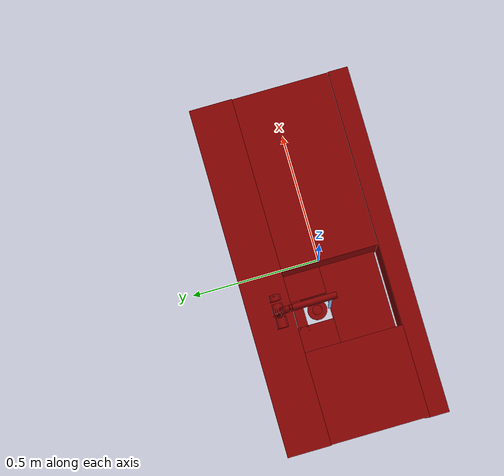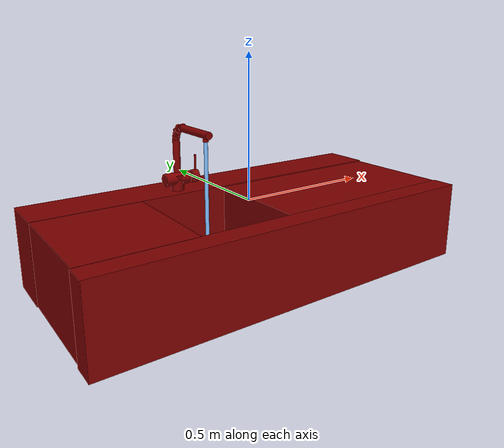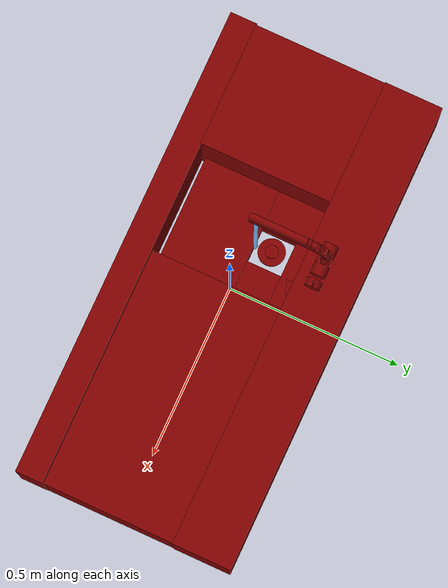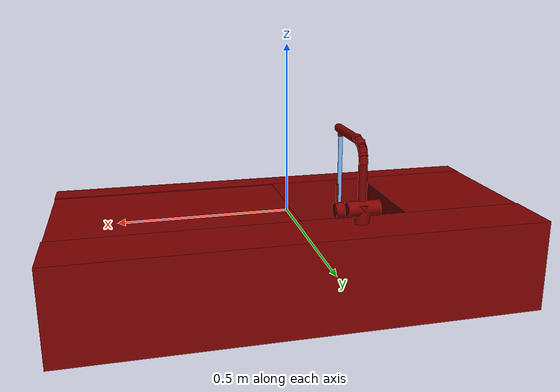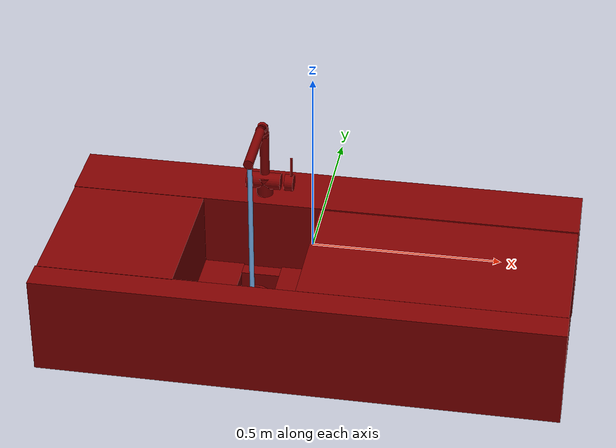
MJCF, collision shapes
<mujoco model="model">
  <compiler angle="radian"/>
  <asset>
    <mesh file="visuals/handle.obj" name="handle_vis"/>
    <mesh file="visuals/Body001.obj" name="Body001_vis"/>
    <mesh file="visuals/Funnel001.obj" name="Funnel001_vis"/>
    <mesh file="visuals/spout.obj" name="spout_vis"/>
    <texture file="visuals/T_BC001.png" name="Body001_material" type="2d"/>
    <material name="Body001_material" rgba="1 1 1 1.0" texture="Body001_material" shininess="0.141421377658844" specular="0.3103448502657381"/>
    <texture file="visuals/T_BC001.png" name="handle_material" type="2d"/>
    <material name="handle_material" rgba="1 1 1 1.0" texture="handle_material" shininess="0.141421377658844" specular="0.3103448502657381"/>
    <texture file="visuals/T_BC001.png" name="Funnel001_material" type="2d"/>
    <material name="Funnel001_material" rgba="1 1 1 1.0" texture="Funnel001_material" shininess="0.141421377658844" specular="0.3103448502657381"/>
    <texture file="visuals/T_BC001.png" name="spout_material" type="2d"/>
    <material name="spout_material" rgba="1 1 1 1.0" texture="spout_material" shininess="0.141421377658844" specular="0.3103448502657381"/>
  </asset>
  <default>
    <default class="visual">
      <geom conaffinity="0" contype="0" group="1" type="mesh"/>
    </default>
    <default class="collision">
      <geom group="0" rgba="0.5 0 0 0.5"/>
    </default>
    <default class="spawn">
      <geom group="0" rgba="1 1 1 0.5" contype="0" conaffinity="0"/>
      <site group="0" rgba="1 1 1 0.5"/>
    </default>
    <default class="region">
      <geom group="1" conaffinity="0" contype="0" rgba="0 1 0 0"/>
    </default>
  </default>
  <worldbody>
    <body>
      <body name="object">
        <geom mesh="Body001_vis" type="mesh" solimp="0.998 0.998 0.001" solref="0.001 1" density="100" friction="0.95 0.3 0.1" class="visual" material="Body001_material"/>
        <geom class="collision" type="box" pos="0.000436 0.234702 -0.122003" size="0.6946535110473633 0.08611290156841278 0.13821163773536682" quat="1.0 0.0 0.0 0.0"/>
        <geom class="collision" type="box" pos="-0.510353 -0.040907 -0.121205" size="0.18155944347381592 0.19975543022155762 0.1364205777645111" quat="1.0 0.0 0.0 0.0"/>
        <geom class="collision" type="box" pos="-0.168564 -0.114065 -0.228610" size="0.17205308377742767 0.11281729489564896 0.03966492787003517" quat="1.0 0.0 0.0 0.0"/>
        <geom class="collision" type="box" pos="0.343502 -0.041476 -0.121911" size="0.3500988185405731 0.19399771094322205 0.13432441651821136" quat="1.0 0.0 0.0 0.0"/>
        <geom class="collision" type="box" pos="-0.000576 -0.278299 -0.122686" size="0.6954123973846436 0.0398494116961956 0.13708318769931793" quat="1.0 0.0 0.0 0.0"/>
        <geom class="collision" type="box" pos="-0.287210 0.074278 -0.228610" size="0.068902388215065 0.07511544227600098 0.03966495767235756" quat="1.0 0.0 0.0 0.0"/>
        <geom class="collision" type="box" pos="-0.168564 0.123298 -0.228610" size="0.17205308377742767 0.019610697403550148 0.03966495022177696" quat="1.0 0.0 0.0 0.0"/>
        <geom class="collision" type="box" pos="-0.044094 0.074278 -0.228610" size="0.068902388215065 0.0751153975725174 0.03966493904590607" quat="1.0 0.0 0.0 0.0"/>
        <geom class="collision" type="cylinder" pos="-0.167858 0.202033 0.039213" size="0.02263602614402771 0.032472364604473114" quat="1.0 0.0 0.0 0.0"/>
        <geom class="collision" type="cylinder" pos="-0.170360 0.202033 0.057701" size="0.02263602614402771 0.04693588986992836" quat="0.7071068286895752 -0.0 0.7071067690849304 0.0"/>
        <body name="handle">
          <joint axis="1.0 0.0 0.0" pos="-0.102589 0.202024 0.058095" limited="true" name="handle_joint_hinge_0" type="hinge" range="-0.7853981633974483 0.7853981633974483" damping="1" frictionloss="1" armature=".01" stiffness="0.05"/>
          <joint axis="0.0 1.0 0.0" pos="-0.102589 0.202024 0.058095" limited="true" name="handle_joint_hinge_1" type="hinge" range="0.0 0.17453292519943295" damping="1" frictionloss="1" armature=".01" stiffness="0.05"/>
          <geom mesh="handle_vis" type="mesh" solimp="0.998 0.998 0.001" solref="0.001 1" density="100" friction="0.95 0.3 0.1" class="visual" material="handle_material"/>
          <geom class="collision" type="cylinder" pos="-0.099753 0.202033 0.057701" size="0.02263602614402771 0.011875688098371029" quat="0.7071068286895752 -0.0 0.7071067690849304 0.0"/>
          <geom class="collision" type="cylinder" pos="-0.093988 0.202542 0.106777" size="0.0038201643619686365 0.027743283659219742" quat="1.0 0.0 0.0 0.0"/>
        </body>
        <body name="Funnel001">
          <joint axis="0.0 0.0 1.0" pos="-0.167855 0.050825 -0.216116" limited="true" name="Funnel001_joint" range="0.0 0.05" type="slide" damping="1" frictionloss="1" armature=".01" stiffness="0.05"/>
          <geom mesh="Funnel001_vis" type="mesh" solimp="0.998 0.998 0.001" solref="0.001 1" density="100" friction="0.95 0.3 0.1" class="visual" material="Funnel001_material"/>
          <geom class="collision" type="cylinder" pos="-0.167855 0.050825 -0.221259" size="0.03924917057156563 0.004558286629617214" quat="1.0 0.0 0.0 0.0"/>
          <geom class="collision" type="cylinder" pos="-0.167855 0.050825 -0.210632" size="0.01911439187824726 0.003532689530402422" quat="1.0 0.0 0.0 0.0"/>
        </body>
        <body name="spout">
          <joint axis="0.0 0.0 1.0" pos="-0.167808 0.202027 0.163732" limited="true" name="spout_joint" range="-0.5235987755982988 0.5235987755982988" type="hinge" damping="1" frictionloss="1" armature=".01" stiffness="0.05"/>
          <site type="cylinder" rgba="0.5 0.75 1 1" size="0.0066134752705693245 0.2378060519695282" pos="-0.167825 -0.000028 -0.014822" name="water"/>
          <geom mesh="spout_vis" type="mesh" solimp="0.998 0.998 0.001" solref="0.001 1" density="100" friction="0.95 0.3 0.1" class="visual" material="spout_material"/>
          <geom class="collision" type="cylinder" pos="-0.167608 0.201829 0.140929" size="0.012858516536653042 0.05865353345870972" quat="1.0 0.0 0.0 0.0"/>
          <geom class="collision" type="cylinder" pos="-0.167799 -0.000137 0.229153" size="0.009285930544137955 0.0064205266535282135" quat="1.0 0.0 0.0 0.0"/>
          <geom class="collision" type="cylinder" pos="-0.167608 0.199328 0.209515" size="0.012858516536653042 0.024497203528881073" quat="0.9920640587806702 0.12573324143886566 0.0 0.0"/>
          <geom class="collision" type="cylinder" pos="-0.167608 0.189318 0.226330" size="0.012858516536653042 0.024497203528881073" quat="0.9472011923789978 0.32063984870910645 0.0 0.0"/>
          <geom class="collision" type="cylinder" pos="-0.167608 0.168320 0.240019" size="0.012858516536653042 0.024497203528881073" quat="0.8263651132583618 0.5631347298622131 0.0 0.0"/>
          <geom class="collision" type="cylinder" pos="-0.167608 0.070015 0.244564" size="0.012858516536653042 0.09095170348882675" quat="0.7071067094802856 0.7071068286895752 0.0 0.0"/>
        </body>
        <geom class="region" name="reg_main" type="box" pos="0.0 0.0 -0.12261" size="0.692331 0.317924 0.13333899999999999"/>
        <geom class="region" name="reg_basin" type="box" pos="-0.170408 -0.042541999999999996 -0.091624" size="0.156121 0.181487 0.099781"/>
      </body>
    </body>
  </worldbody>
  <actuator>
    <motor name="handle_joint_hinge_0_actuator" joint="handle_joint_hinge_0" gear="10"/>
    <motor name="handle_joint_hinge_1_actuator" joint="handle_joint_hinge_1" gear="10"/>
    <motor name="Funnel001_joint_actuator" joint="Funnel001_joint" gear="10"/>
    <motor name="spout_joint_actuator" joint="spout_joint" gear="10"/>
  </actuator>
</mujoco>
